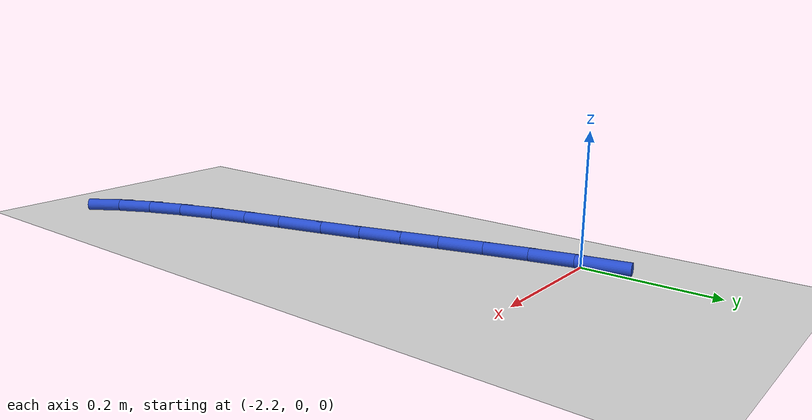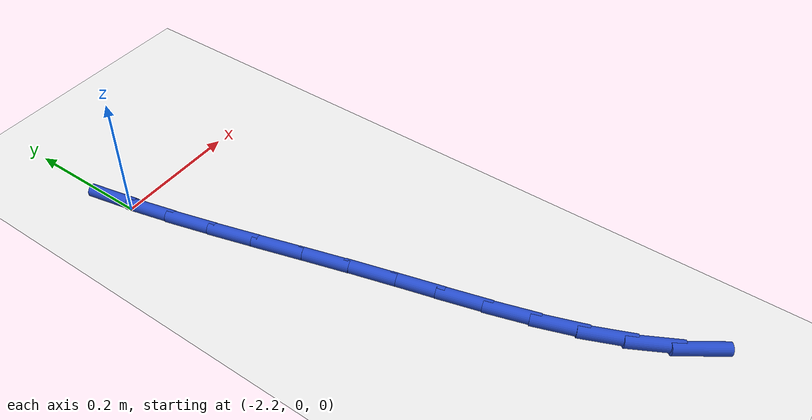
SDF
<sdf version="1.6">
 <world name="default">
  <model name="ground_plane">
   <static>1</static>
   <link name="link">
    <collision name="collision">
     <geometry><plane><normal>0 0 1</normal><size>100 100</size></plane></geometry>
     <surface><friction><ode><mu>100</mu><mu2>50</mu2></ode></friction></surface>
    </collision>
    <visual name="visual">
     <cast_shadows>0</cast_shadows>
     <geometry><plane><normal>0 0 1</normal><size>100 100</size></plane></geometry>
     <material>
      <script><uri>file://media/materials/scripts/gazebo.material</uri><name>Gazebo/WhiteGlow</name></script>
     </material>
    </visual>
   </link>
  </model>
  <model name="line">
   <link name="link_56">
    <pose>-2.2034075658025496 0.032757810516168336 0.01 0 1.57 -1.3613872093317583</pose>
    <collision name="collision">
     <geometry><cylinder><radius>0.01</radius><length>0.08</length></cylinder></geometry>
    </collision>
    <visual name="visual">
     <material>
      <script><name>Gazebo/Blue</name><uri>file://media/materials/scripts/gazebo.material</uri></script>
     </material>
     <geometry><cylinder><radius>0.01</radius><length>0.08</length></cylinder></geometry>
    </visual>
   </link>
   <link name="link_57">
    <pose>-2.1892883329040767 -0.03367788624910329 0.01 0 1.57 -1.3274601378164261</pose>
    <collision name="collision">
     <geometry><cylinder><radius>0.01</radius><length>0.08</length></cylinder></geometry>
    </collision>
    <visual name="visual">
     <material>
      <script><name>Gazebo/Blue</name><uri>file://media/materials/scripts/gazebo.material</uri></script>
     </material>
     <geometry><cylinder><radius>0.01</radius><length>0.08</length></cylinder></geometry>
    </visual>
   </link>
   <link name="link_58">
    <pose>-2.1725263164457367 -0.10119707779134057 0.01 0 1.57 -1.3043153029135852</pose>
    <collision name="collision">
     <geometry><cylinder><radius>0.01</radius><length>0.08</length></cylinder></geometry>
    </collision>
    <visual name="visual">
     <material>
      <script><name>Gazebo/Blue</name><uri>file://media/materials/scripts/gazebo.material</uri></script>
     </material>
     <geometry><cylinder><radius>0.01</radius><length>0.08</length></cylinder></geometry>
    </visual>
   </link>
   <link name="link_59">
    <pose>-2.1539027724716044 -0.16942186161902006 0.01 0 1.57 -1.2909141531745116</pose>
    <collision name="collision">
     <geometry><cylinder><radius>0.01</radius><length>0.08</length></cylinder></geometry>
    </collision>
    <visual name="visual">
     <material>
      <script><name>Gazebo/Blue</name><uri>file://media/materials/scripts/gazebo.material</uri></script>
     </material>
     <geometry><cylinder><radius>0.01</radius><length>0.08</length></cylinder></geometry>
    </visual>
   </link>
   <link name="link_60">
    <pose>-2.1341989570257534 -0.23797433524061495 0.01 0 1.57 -1.2866927492270037</pose>
    <collision name="collision">
     <geometry><cylinder><radius>0.01</radius><length>0.08</length></cylinder></geometry>
    </collision>
    <visual name="visual">
     <material>
      <script><name>Gazebo/Blue</name><uri>file://media/materials/scripts/gazebo.material</uri></script>
     </material>
     <geometry><cylinder><radius>0.01</radius><length>0.08</length></cylinder></geometry>
    </visual>
   </link>
   <link name="link_61">
    <pose>-2.114196126152258 -0.3064765961646018 0.01 0 1.57 -1.291534917491283</pose>
    <collision name="collision">
     <geometry><cylinder><radius>0.01</radius><length>0.08</length></cylinder></geometry>
    </collision>
    <visual name="visual">
     <material>
      <script><name>Gazebo/Blue</name><uri>file://media/materials/scripts/gazebo.material</uri></script>
     </material>
     <geometry><cylinder><radius>0.01</radius><length>0.08</length></cylinder></geometry>
    </visual>
   </link>
   <link name="link_62">
    <pose>-2.0946755358951923 -0.3745507418994539 0.01 0 1.57 -1.3041849074332101</pose>
    <collision name="collision">
     <geometry><cylinder><radius>0.01</radius><length>0.08</length></cylinder></geometry>
    </collision>
    <visual name="visual">
     <material>
      <script><name>Gazebo/Blue</name><uri>file://media/materials/scripts/gazebo.material</uri></script>
     </material>
     <geometry><cylinder><radius>0.01</radius><length>0.08</length></cylinder></geometry>
    </visual>
   </link>
   <link name="link_63">
    <pose>-2.076305738023991 -0.4418114370675657 0.01 0 1.57 -1.3098311004107972</pose>
    <collision name="collision">
     <geometry><cylinder><radius>0.01</radius><length>0.08</length></cylinder></geometry>
    </collision>
    <visual name="visual">
     <material>
      <script><name>Gazebo/Blue</name><uri>file://media/materials/scripts/gazebo.material</uri></script>
     </material>
     <geometry><cylinder><radius>0.01</radius><length>0.08</length></cylinder></geometry>
    </visual>
   </link>
   <link name="link_64">
    <pose>-2.0586824475835845 -0.5078025923364909 0.01 0 1.57 -1.299353150423087</pose>
    <collision name="collision">
     <geometry><cylinder><radius>0.01</radius><length>0.08</length></cylinder></geometry>
    </collision>
    <visual name="visual">
     <material>
      <script><name>Gazebo/Blue</name><uri>file://media/materials/scripts/gazebo.material</uri></script>
     </material>
     <geometry><cylinder><radius>0.01</radius><length>0.08</length></cylinder></geometry>
    </visual>
   </link>
   <link name="link_65">
    <pose>-2.0408074514530448 -0.5720289486048317 0.01 0 1.57 -1.2713426360643096</pose>
    <collision name="collision">
     <geometry><cylinder><radius>0.01</radius><length>0.08</length></cylinder></geometry>
    </collision>
    <visual name="visual">
     <material>
      <script><name>Gazebo/Blue</name><uri>file://media/materials/scripts/gazebo.material</uri></script>
     </material>
     <geometry><cylinder><radius>0.01</radius><length>0.08</length></cylinder></geometry>
    </visual>
   </link>
   <link name="link_66">
    <pose>-2.0216762431511572 -0.6339948317218927 0.01 0 1.57 -1.2240985988457094</pose>
    <collision name="collision">
     <geometry><cylinder><radius>0.01</radius><length>0.08</length></cylinder></geometry>
    </collision>
    <visual name="visual">
     <material>
      <script><name>Gazebo/Blue</name><uri>file://media/materials/scripts/gazebo.material</uri></script>
     </material>
     <geometry><cylinder><radius>0.01</radius><length>0.08</length></cylinder></geometry>
    </visual>
   </link>
   <link name="link_67">
    <pose>-2.0002843161967063 -0.6932045675369752 0.01 0 1.57 -1.1557555301261935</pose>
    <collision name="collision">
     <geometry><cylinder><radius>0.01</radius><length>0.08</length></cylinder></geometry>
    </collision>
    <visual name="visual">
     <material>
      <script><name>Gazebo/Blue</name><uri>file://media/materials/scripts/gazebo.material</uri></script>
     </material>
     <geometry><cylinder><radius>0.01</radius><length>0.08</length></cylinder></geometry>
    </visual>
   </link>
   <link name="link_68">
    <pose>-1.975627164108477 -0.7491624818993846 0.01 0 1.57 -1.0648534083703312</pose>
    <collision name="collision">
     <geometry><cylinder><radius>0.01</radius><length>0.08</length></cylinder></geometry>
    </collision>
    <visual name="visual">
     <material>
      <script><name>Gazebo/Blue</name><uri>file://media/materials/scripts/gazebo.material</uri></script>
     </material>
     <geometry><cylinder><radius>0.01</radius><length>0.08</length></cylinder></geometry>
    </visual>
   </link>
   <link name="link_69">
    <pose>-1.946700280405256 -0.8013729006584227 0.01 0 1.57 -0.9513921689831459</pose>
    <collision name="collision">
     <geometry><cylinder><radius>0.01</radius><length>0.08</length></cylinder></geometry>
    </collision>
    <visual name="visual">
     <material>
      <script><name>Gazebo/Blue</name><uri>file://media/materials/scripts/gazebo.material</uri></script>
     </material>
     <geometry><cylinder><radius>0.01</radius><length>0.08</length></cylinder></geometry>
    </visual>
   </link>
  </model>
 </world>
</sdf>
